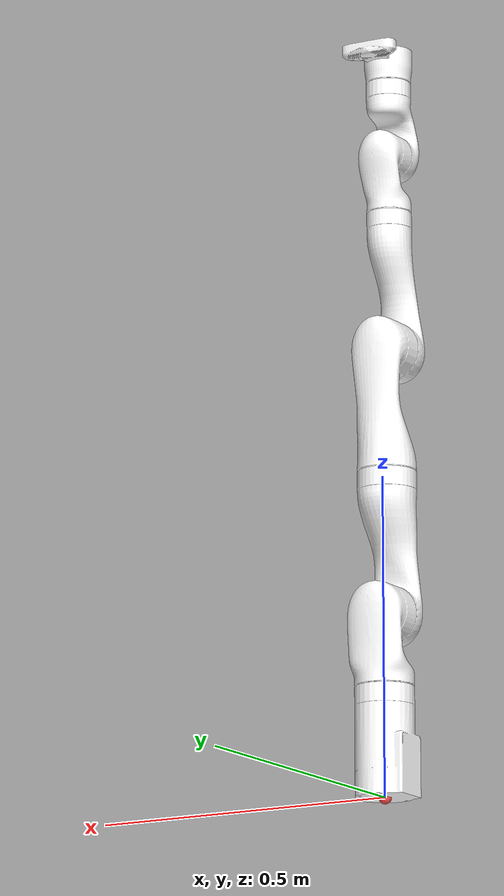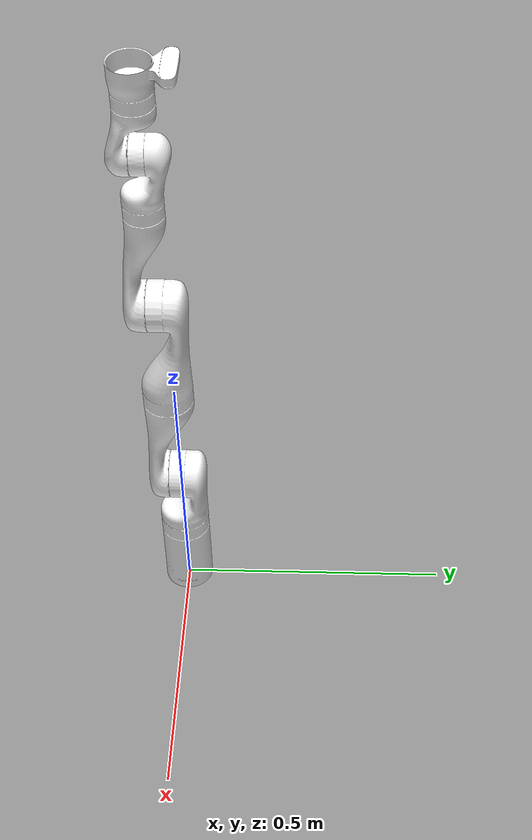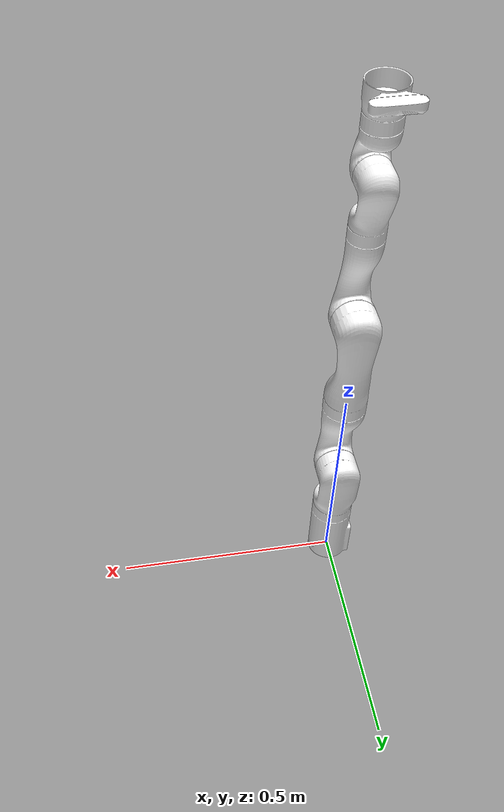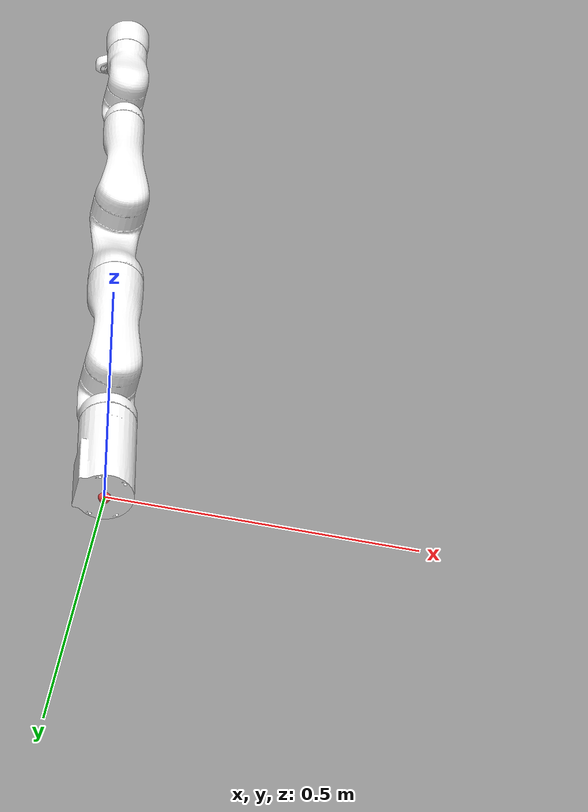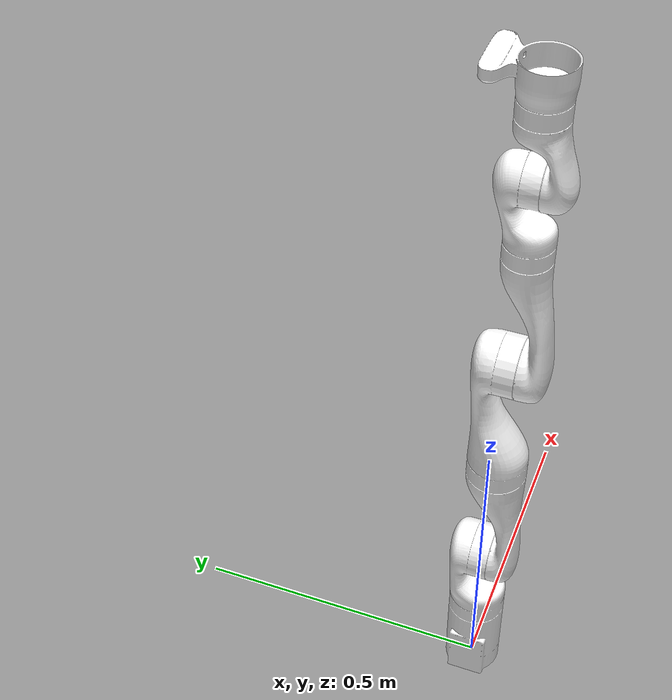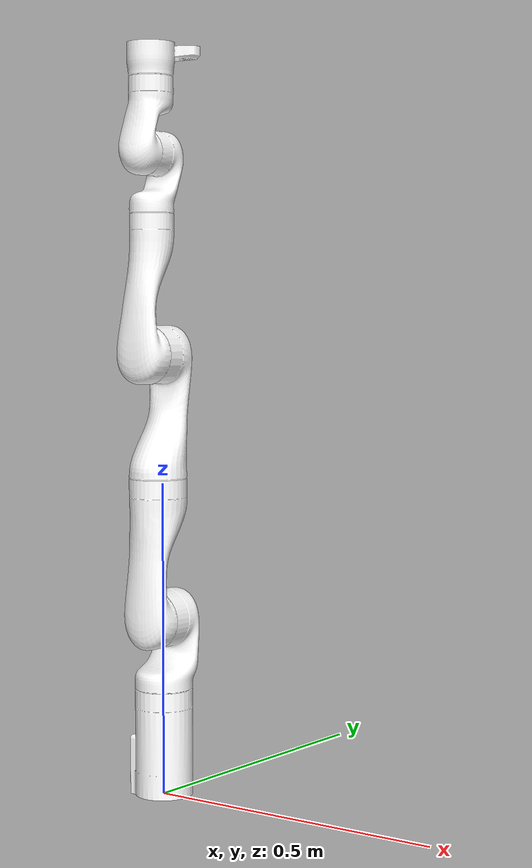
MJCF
<?xml version="1.0" ?>
<mujoco model="kinova3">
  <compiler angle="radian"/>
  <actuator>
    <motor ctrllimited="true" ctrlrange="-32.0 32.0" joint="Actuator1" name="torq_j1"/>
    <motor ctrllimited="true" ctrlrange="-32.0 32.0" joint="Actuator2" name="torq_j2"/>
    <motor ctrllimited="true" ctrlrange="-32.0 32.0" joint="Actuator3" name="torq_j3"/>
    <motor ctrllimited="true" ctrlrange="-32.0 32.0" joint="Actuator4" name="torq_j4"/>
    <motor ctrllimited="true" ctrlrange="-32.0 32.0" joint="Actuator5" name="torq_j5"/>
    <motor ctrllimited="true" ctrlrange="-13.0 13.0" joint="Actuator6" name="torq_j6"/>
    <motor ctrllimited="true" ctrlrange="-13.0 13.0" joint="Actuator7" name="torq_j7"/>
  </actuator>
  <asset>
    <mesh name="base_link" file="meshes/base_link.stl"/>
    <mesh name="shoulder_link" file="meshes/shoulder_link.stl"/>
    <mesh name="half_arm_1_link" file="meshes/half_arm_1_link.stl"/>
    <mesh name="half_arm_2_link" file="meshes/half_arm_2_link.stl"/>
    <mesh name="forearm_link" file="meshes/forearm_link.stl"/>
    <mesh name="spherical_wrist_1_link" file="meshes/spherical_wrist_1_link.stl"/>
    <mesh name="spherical_wrist_2_link" file="meshes/spherical_wrist_2_link.stl"/>
    <mesh name="bracelet_with_vision_link" file="meshes/bracelet_with_vision_link.stl"/>
  </asset>
  <worldbody>
    <body name="base" pos="0 0 0">
      <!-- robot view -->
      <camera mode="fixed" name="robotview" pos="1.0 0 0.4" quat="0.653 0.271 0.271 0.653"/>
      <inertial diaginertia="0 0 0" mass="0" pos="0 0 0"/>
      <!-- mount attached here -->
      <body name="fixed_base_link" pos="0 0 0">
        <site name="right_center" pos="0 0 0" size="0.01" rgba="1 0.3 0.3 1" group="2"/>
        <geom type="mesh" contype="0" conaffinity="0" group="1" rgba="1 1 1 1" mesh="base_link"/>
        <geom type="mesh" conaffinity="0" rgba="0.75294 0.75294 0.75294 1" mesh="base_link" name="base_collision"/>
        <body name="shoulder_link" pos="0 0 0.15643" quat="-3.67321e-06 1 0 0">
          <inertial pos="-2.3e-05 -0.010364 -0.07336" quat="0.707051 0.0451246 -0.0453544 0.704263" mass="1.3773" diaginertia="0.00488868 0.00457 0.00135132"/>
          <joint name="Actuator1" pos="0 0 0" axis="0 0 1" damping="0.1"/>
          <geom type="mesh" contype="0" conaffinity="0" group="1" rgba="1 1 1 1" name="s_visual" mesh="shoulder_link"/>
          <geom type="mesh" conaffinity="0" rgba="0.75294 0.75294 0.75294 1" mesh="shoulder_link" name="s_collision"/>
          <body name="HalfArm1_Link" pos="0 0.005375 -0.12838" quat="0.707105 0.707108 0 0">
            <inertial pos="-4.4e-05 -0.09958 -0.013278" quat="0.482348 0.516286 -0.516862 0.483366" mass="1.1636" diaginertia="0.0113017 0.011088 0.00102532"/>
            <joint name="Actuator2" pos="0 0 0" axis="0 0 1" limited="true" range="-2.41 2.41" damping="0.1"/>
            <geom type="mesh" contype="0" conaffinity="0" group="1" rgba="1 1 1 1" name="ha1_visual" mesh="half_arm_1_link"/>
            <geom type="mesh" conaffinity="0" rgba="0.75294 0.75294 0.75294 1" mesh="half_arm_1_link" name="ha1_collision"/>
            <body name="HalfArm2_Link" pos="0 -0.21038 -0.006375" quat="0.707105 -0.707108 0 0">
              <inertial pos="-4.4e-05 -0.006641 -0.117892" quat="0.706144 0.0213722 -0.0209128 0.707437" mass="1.1636" diaginertia="0.0111633 0.010932 0.00100671"/>
              <joint name="Actuator3" pos="0 0 0" axis="0 0 1" damping="0.1"/>
              <geom type="mesh" contype="0" conaffinity="0" group="1" rgba="1 1 1 1" name="ha2_visual" mesh="half_arm_2_link"/>
              <geom type="mesh" conaffinity="0" rgba="0.75294 0.75294 0.75294 1" mesh="half_arm_2_link" name="ha2_collision"/>
              <body name="forearm_link" pos="0 0.006375 -0.21038" quat="0.707105 0.707108 0 0">
                <inertial pos="-1.8e-05 -0.075478 -0.015006" quat="0.483678 0.515961 -0.515859 0.483455" mass="0.9302" diaginertia="0.00834839 0.008147 0.000598606"/>
                <joint name="Actuator4" pos="0 0 0" axis="0 0 1" limited="true" range="-2.66 2.66" damping="0.1"/>
                <geom type="mesh" contype="0" conaffinity="0" group="1" rgba="1 1 1 1" name="f_visual" mesh="forearm_link"/>
                <geom type="mesh" conaffinity="0" rgba="0.75294 0.75294 0.75294 1" mesh="forearm_link" name="f_collision"/>
                <body name="SphericalWrist1_Link" pos="0 -0.20843 -0.006375" quat="0.707105 -0.707108 0 0">
                  <inertial pos="1e-06 -0.009432 -0.063883" quat="0.703558 0.0707492 -0.0707492 0.703558" mass="0.6781" diaginertia="0.00165901 0.001596 0.000346988"/>
                  <joint name="Actuator5" pos="0 0 0" axis="0 0 1" damping="0.1"/>
                  <geom type="mesh" contype="0" conaffinity="0" group="1" rgba="1 1 1 1" name="w1_visual" mesh="spherical_wrist_1_link"/>
                  <geom type="mesh" conaffinity="0" rgba="0.75294 0.75294 0.75294 1" mesh="spherical_wrist_1_link" name="w1_collision"/>
                  <body name="SphericalWrist2_Link" pos="0 0.00017505 -0.10593" quat="0.707105 0.707108 0 0">
                    <inertial pos="1e-06 -0.045483 -0.00965" quat="0.44426 0.550121 -0.550121 0.44426" mass="0.6781" diaginertia="0.00170087 0.001641 0.00035013"/>
                    <joint name="Actuator6" pos="0 0 0" axis="0 0 1" limited="true" range="-2.23 2.23" damping="0.01"/>
                    <geom type="mesh" contype="0" conaffinity="0" group="1" rgba="1 1 1 1" name="w2_visual" mesh="spherical_wrist_2_link"/>
                    <geom type="mesh" conaffinity="0" rgba="0.75294 0.75294 0.75294 1" mesh="spherical_wrist_2_link" name="w2_collision"/>
                    <body name="Bracelet_Link" pos="0 -0.10593 -0.00017505" quat="0.707105 -0.707108 0 0">
                      <inertial pos="-0.000281 -0.011402 -0.029798" quat="0.601961 0.40663 -0.381169 0.571843" mass="0.5006" diaginertia="0.000657515 0.000586793 0.000320693"/>
                      <joint name="Actuator7" pos="0 0 0" axis="0 0 1" damping="0.01"/>
                      <geom type="mesh" contype="0" conaffinity="0" group="1" rgba="1 1 1 1" name="b_visual" mesh="bracelet_with_vision_link"/>
                      <geom type="mesh" conaffinity="0" rgba="0.75294 0.75294 0.75294 1" mesh="bracelet_with_vision_link" name="b_collision"/>
                      <body name="right_hand" pos="0 0 -0.0615" quat="0 0.707105 -0.707108 0">
                        <!-- This camera points out from the eef. -->
                        <camera mode="fixed" name="eye_in_hand" pos="0.05 0 0" quat="0 0.707108 0.707108 0" fovy="75"/>
                        <!-- To add gripper -->
                      </body>
                    </body>
                  </body>
                </body>
              </body>
            </body>
          </body>
        </body>
      </body>
    </body>
  </worldbody>
</mujoco>
